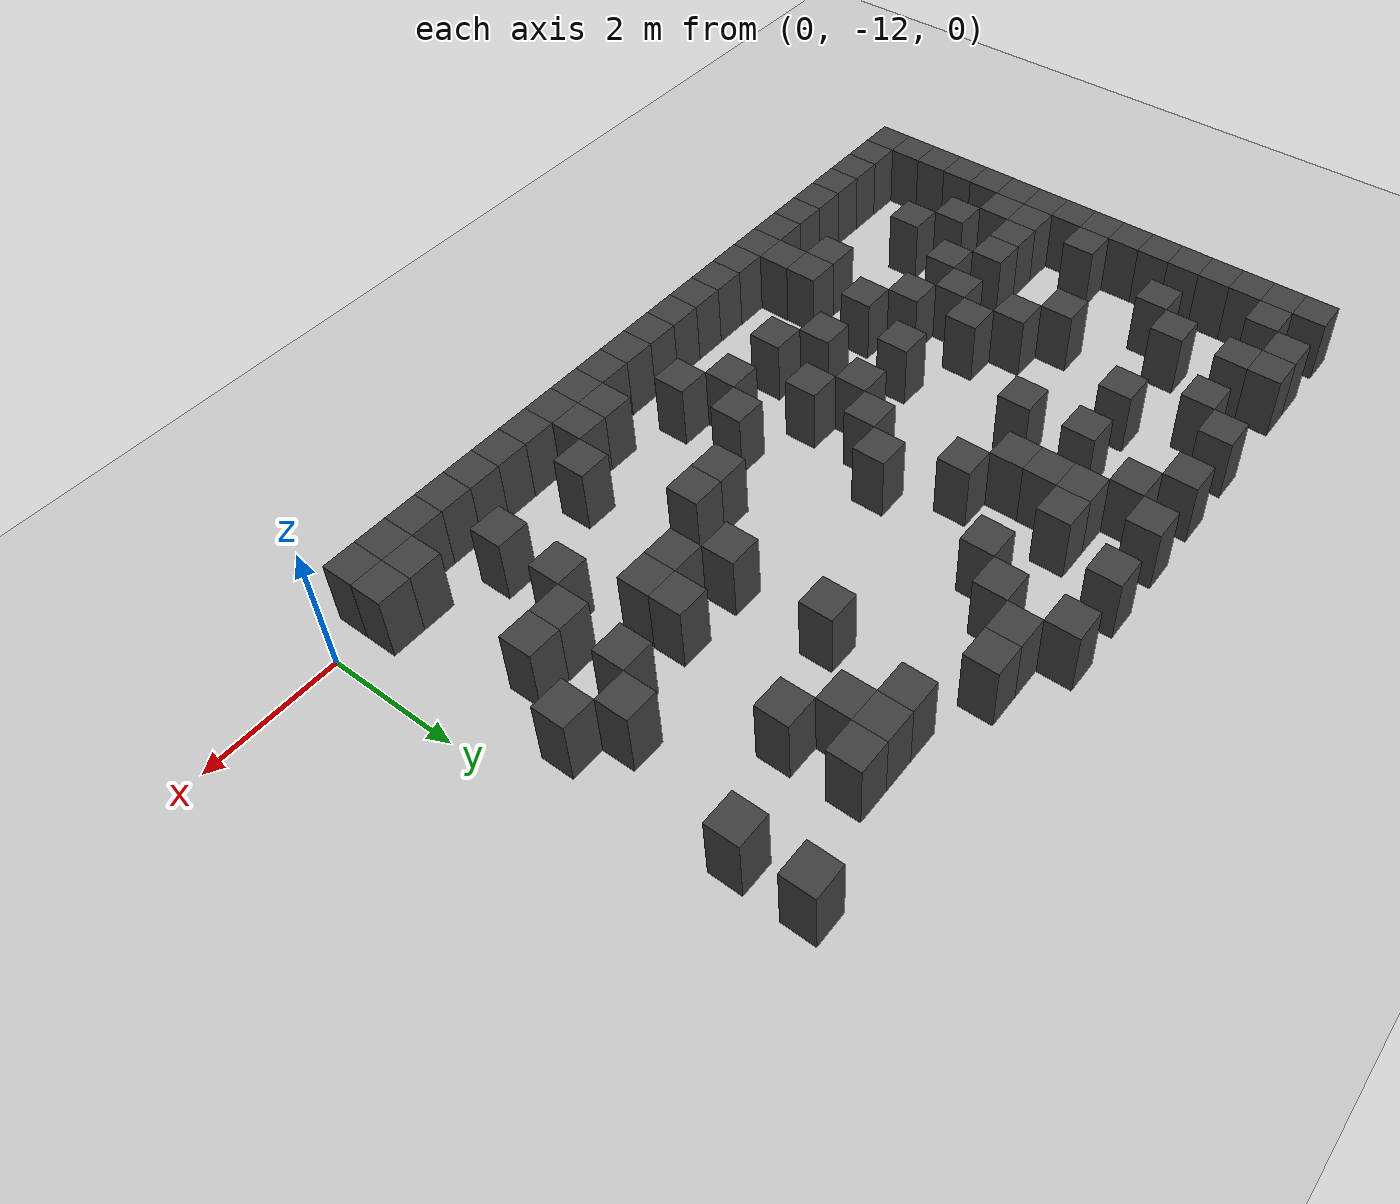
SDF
<sdf version="1.7">
 <world name="map_4557">
  <model name="ground_plane">
   <static>true</static>
   <link name="link">
    <collision name="collision">
     <geometry><plane><normal>0 0 1</normal><size>200 200</size></plane></geometry>
    </collision>
    <visual name="visual">
     <geometry><plane><normal>0 0 1</normal><size>200 200</size></plane></geometry>
     <material><ambient>0.8 0.8 0.8 1</ambient><diffuse>0.8 0.8 0.8 1</diffuse></material>
    </visual>
   </link>
  </model>
  <model name="maze_environment">
   <static>true</static>
   <link name="wall_461">
    <pose>-12.250 -4.750 0.500 0 0 0</pose>
    <collision name="col"><geometry><box><size>0.5 0.5 1.0</size></box></geometry></collision>
    <visual name="vis">
     <geometry><box><size>0.5 0.5 1.0</size></box></geometry>
     <material><ambient>0.15 0.15 0.15 1</ambient><diffuse>0.25 0.25 0.25 1</diffuse></material>
    </visual>
   </link>
   <link name="wall_462">
    <pose>-11.250 -4.750 0.500 0 0 0</pose>
    <collision name="col"><geometry><box><size>0.5 0.5 1.0</size></box></geometry></collision>
    <visual name="vis">
     <geometry><box><size>0.5 0.5 1.0</size></box></geometry>
     <material><ambient>0.15 0.15 0.15 1</ambient><diffuse>0.25 0.25 0.25 1</diffuse></material>
    </visual>
   </link>
   <link name="wall_463">
    <pose>-10.750 -4.750 0.500 0 0 0</pose>
    <collision name="col"><geometry><box><size>0.5 0.5 1.0</size></box></geometry></collision>
    <visual name="vis">
     <geometry><box><size>0.5 0.5 1.0</size></box></geometry>
     <material><ambient>0.15 0.15 0.15 1</ambient><diffuse>0.25 0.25 0.25 1</diffuse></material>
    </visual>
   </link>
   <link name="wall_464">
    <pose>-9.250 -4.750 0.500 0 0 0</pose>
    <collision name="col"><geometry><box><size>0.5 0.5 1.0</size></box></geometry></collision>
    <visual name="vis">
     <geometry><box><size>0.5 0.5 1.0</size></box></geometry>
     <material><ambient>0.15 0.15 0.15 1</ambient><diffuse>0.25 0.25 0.25 1</diffuse></material>
    </visual>
   </link>
   <link name="wall_465">
    <pose>-8.250 -4.750 0.500 0 0 0</pose>
    <collision name="col"><geometry><box><size>0.5 0.5 1.0</size></box></geometry></collision>
    <visual name="vis">
     <geometry><box><size>0.5 0.5 1.0</size></box></geometry>
     <material><ambient>0.15 0.15 0.15 1</ambient><diffuse>0.25 0.25 0.25 1</diffuse></material>
    </visual>
   </link>
   <link name="wall_466">
    <pose>-7.250 -4.750 0.500 0 0 0</pose>
    <collision name="col"><geometry><box><size>0.5 0.5 1.0</size></box></geometry></collision>
    <visual name="vis">
     <geometry><box><size>0.5 0.5 1.0</size></box></geometry>
     <material><ambient>0.15 0.15 0.15 1</ambient><diffuse>0.25 0.25 0.25 1</diffuse></material>
    </visual>
   </link>
   <link name="wall_467">
    <pose>-6.250 -4.750 0.500 0 0 0</pose>
    <collision name="col"><geometry><box><size>0.5 0.5 1.0</size></box></geometry></collision>
    <visual name="vis">
     <geometry><box><size>0.5 0.5 1.0</size></box></geometry>
     <material><ambient>0.15 0.15 0.15 1</ambient><diffuse>0.25 0.25 0.25 1</diffuse></material>
    </visual>
   </link>
   <link name="wall_468">
    <pose>-5.250 -4.750 0.500 0 0 0</pose>
    <collision name="col"><geometry><box><size>0.5 0.5 1.0</size></box></geometry></collision>
    <visual name="vis">
     <geometry><box><size>0.5 0.5 1.0</size></box></geometry>
     <material><ambient>0.15 0.15 0.15 1</ambient><diffuse>0.25 0.25 0.25 1</diffuse></material>
    </visual>
   </link>
   <link name="wall_475">
    <pose>-12.250 -5.250 0.500 0 0 0</pose>
    <collision name="col"><geometry><box><size>0.5 0.5 1.0</size></box></geometry></collision>
    <visual name="vis">
     <geometry><box><size>0.5 0.5 1.0</size></box></geometry>
     <material><ambient>0.15 0.15 0.15 1</ambient><diffuse>0.25 0.25 0.25 1</diffuse></material>
    </visual>
   </link>
   <link name="wall_476">
    <pose>-11.750 -5.250 0.500 0 0 0</pose>
    <collision name="col"><geometry><box><size>0.5 0.5 1.0</size></box></geometry></collision>
    <visual name="vis">
     <geometry><box><size>0.5 0.5 1.0</size></box></geometry>
     <material><ambient>0.15 0.15 0.15 1</ambient><diffuse>0.25 0.25 0.25 1</diffuse></material>
    </visual>
   </link>
   <link name="wall_477">
    <pose>-10.750 -5.250 0.500 0 0 0</pose>
    <collision name="col"><geometry><box><size>0.5 0.5 1.0</size></box></geometry></collision>
    <visual name="vis">
     <geometry><box><size>0.5 0.5 1.0</size></box></geometry>
     <material><ambient>0.15 0.15 0.15 1</ambient><diffuse>0.25 0.25 0.25 1</diffuse></material>
    </visual>
   </link>
   <link name="wall_478">
    <pose>-9.750 -5.250 0.500 0 0 0</pose>
    <collision name="col"><geometry><box><size>0.5 0.5 1.0</size></box></geometry></collision>
    <visual name="vis">
     <geometry><box><size>0.5 0.5 1.0</size></box></geometry>
     <material><ambient>0.15 0.15 0.15 1</ambient><diffuse>0.25 0.25 0.25 1</diffuse></material>
    </visual>
   </link>
   <link name="wall_479">
    <pose>-7.750 -5.250 0.500 0 0 0</pose>
    <collision name="col"><geometry><box><size>0.5 0.5 1.0</size></box></geometry></collision>
    <visual name="vis">
     <geometry><box><size>0.5 0.5 1.0</size></box></geometry>
     <material><ambient>0.15 0.15 0.15 1</ambient><diffuse>0.25 0.25 0.25 1</diffuse></material>
    </visual>
   </link>
   <link name="wall_480">
    <pose>-4.750 -5.250 0.500 0 0 0</pose>
    <collision name="col"><geometry><box><size>0.5 0.5 1.0</size></box></geometry></collision>
    <visual name="vis">
     <geometry><box><size>0.5 0.5 1.0</size></box></geometry>
     <material><ambient>0.15 0.15 0.15 1</ambient><diffuse>0.25 0.25 0.25 1</diffuse></material>
    </visual>
   </link>
   <link name="wall_481">
    <pose>-4.250 -5.250 0.500 0 0 0</pose>
    <collision name="col"><geometry><box><size>0.5 0.5 1.0</size></box></geometry></collision>
    <visual name="vis">
     <geometry><box><size>0.5 0.5 1.0</size></box></geometry>
     <material><ambient>0.15 0.15 0.15 1</ambient><diffuse>0.25 0.25 0.25 1</diffuse></material>
    </visual>
   </link>
   <link name="wall_482">
    <pose>-0.750 -5.250 0.500 0 0 0</pose>
    <collision name="col"><geometry><box><size>0.5 0.5 1.0</size></box></geometry></collision>
    <visual name="vis">
     <geometry><box><size>0.5 0.5 1.0</size></box></geometry>
     <material><ambient>0.15 0.15 0.15 1</ambient><diffuse>0.25 0.25 0.25 1</diffuse></material>
    </visual>
   </link>
   <link name="wall_492">
    <pose>-12.250 -5.750 0.500 0 0 0</pose>
    <collision name="col"><geometry><box><size>0.5 0.5 1.0</size></box></geometry></collision>
    <visual name="vis">
     <geometry><box><size>0.5 0.5 1.0</size></box></geometry>
     <material><ambient>0.15 0.15 0.15 1</ambient><diffuse>0.25 0.25 0.25 1</diffuse></material>
    </visual>
   </link>
   <link name="wall_493">
    <pose>-7.250 -5.750 0.500 0 0 0</pose>
    <collision name="col"><geometry><box><size>0.5 0.5 1.0</size></box></geometry></collision>
    <visual name="vis">
     <geometry><box><size>0.5 0.5 1.0</size></box></geometry>
     <material><ambient>0.15 0.15 0.15 1</ambient><diffuse>0.25 0.25 0.25 1</diffuse></material>
    </visual>
   </link>
   <link name="wall_494">
    <pose>-6.750 -5.750 0.500 0 0 0</pose>
    <collision name="col"><geometry><box><size>0.5 0.5 1.0</size></box></geometry></collision>
    <visual name="vis">
     <geometry><box><size>0.5 0.5 1.0</size></box></geometry>
     <material><ambient>0.15 0.15 0.15 1</ambient><diffuse>0.25 0.25 0.25 1</diffuse></material>
    </visual>
   </link>
   <link name="wall_495">
    <pose>-5.250 -5.750 0.500 0 0 0</pose>
    <collision name="col"><geometry><box><size>0.5 0.5 1.0</size></box></geometry></collision>
    <visual name="vis">
     <geometry><box><size>0.5 0.5 1.0</size></box></geometry>
     <material><ambient>0.15 0.15 0.15 1</ambient><diffuse>0.25 0.25 0.25 1</diffuse></material>
    </visual>
   </link>
   <link name="wall_496">
    <pose>-3.250 -5.750 0.500 0 0 0</pose>
    <collision name="col"><geometry><box><size>0.5 0.5 1.0</size></box></geometry></collision>
    <visual name="vis">
     <geometry><box><size>0.5 0.5 1.0</size></box></geometry>
     <material><ambient>0.15 0.15 0.15 1</ambient><diffuse>0.25 0.25 0.25 1</diffuse></material>
    </visual>
   </link>
   <link name="wall_497">
    <pose>-2.750 -5.750 0.500 0 0 0</pose>
    <collision name="col"><geometry><box><size>0.5 0.5 1.0</size></box></geometry></collision>
    <visual name="vis">
     <geometry><box><size>0.5 0.5 1.0</size></box></geometry>
     <material><ambient>0.15 0.15 0.15 1</ambient><diffuse>0.25 0.25 0.25 1</diffuse></material>
    </visual>
   </link>
   <link name="wall_498">
    <pose>-2.250 -5.750 0.500 0 0 0</pose>
    <collision name="col"><geometry><box><size>0.5 0.5 1.0</size></box></geometry></collision>
    <visual name="vis">
     <geometry><box><size>0.5 0.5 1.0</size></box></geometry>
     <material><ambient>0.15 0.15 0.15 1</ambient><diffuse>0.25 0.25 0.25 1</diffuse></material>
    </visual>
   </link>
   <link name="wall_505">
    <pose>-12.250 -6.250 0.500 0 0 0</pose>
    <collision name="col"><geometry><box><size>0.5 0.5 1.0</size></box></geometry></collision>
    <visual name="vis">
     <geometry><box><size>0.5 0.5 1.0</size></box></geometry>
     <material><ambient>0.15 0.15 0.15 1</ambient><diffuse>0.25 0.25 0.25 1</diffuse></material>
    </visual>
   </link>
   <link name="wall_506">
    <pose>-10.750 -6.250 0.500 0 0 0</pose>
    <collision name="col"><geometry><box><size>0.5 0.5 1.0</size></box></geometry></collision>
    <visual name="vis">
     <geometry><box><size>0.5 0.5 1.0</size></box></geometry>
     <material><ambient>0.15 0.15 0.15 1</ambient><diffuse>0.25 0.25 0.25 1</diffuse></material>
    </visual>
   </link>
   <link name="wall_507">
    <pose>-9.250 -6.250 0.500 0 0 0</pose>
    <collision name="col"><geometry><box><size>0.5 0.5 1.0</size></box></geometry></collision>
    <visual name="vis">
     <geometry><box><size>0.5 0.5 1.0</size></box></geometry>
     <material><ambient>0.15 0.15 0.15 1</ambient><diffuse>0.25 0.25 0.25 1</diffuse></material>
    </visual>
   </link>
   <link name="wall_508">
    <pose>-8.250 -6.250 0.500 0 0 0</pose>
    <collision name="col"><geometry><box><size>0.5 0.5 1.0</size></box></geometry></collision>
    <visual name="vis">
     <geometry><box><size>0.5 0.5 1.0</size></box></geometry>
     <material><ambient>0.15 0.15 0.15 1</ambient><diffuse>0.25 0.25 0.25 1</diffuse></material>
    </visual>
   </link>
   <link name="wall_509">
    <pose>-7.250 -6.250 0.500 0 0 0</pose>
    <collision name="col"><geometry><box><size>0.5 0.5 1.0</size></box></geometry></collision>
    <visual name="vis">
     <geometry><box><size>0.5 0.5 1.0</size></box></geometry>
     <material><ambient>0.15 0.15 0.15 1</ambient><diffuse>0.25 0.25 0.25 1</diffuse></material>
    </visual>
   </link>
   <link name="wall_510">
    <pose>-5.750 -6.250 0.500 0 0 0</pose>
    <collision name="col"><geometry><box><size>0.5 0.5 1.0</size></box></geometry></collision>
    <visual name="vis">
     <geometry><box><size>0.5 0.5 1.0</size></box></geometry>
     <material><ambient>0.15 0.15 0.15 1</ambient><diffuse>0.25 0.25 0.25 1</diffuse></material>
    </visual>
   </link>
   <link name="wall_511">
    <pose>-2.750 -6.250 0.500 0 0 0</pose>
    <collision name="col"><geometry><box><size>0.5 0.5 1.0</size></box></geometry></collision>
    <visual name="vis">
     <geometry><box><size>0.5 0.5 1.0</size></box></geometry>
     <material><ambient>0.15 0.15 0.15 1</ambient><diffuse>0.25 0.25 0.25 1</diffuse></material>
    </visual>
   </link>
   <link name="wall_512">
    <pose>-0.750 -6.250 0.500 0 0 0</pose>
    <collision name="col"><geometry><box><size>0.5 0.5 1.0</size></box></geometry></collision>
    <visual name="vis">
     <geometry><box><size>0.5 0.5 1.0</size></box></geometry>
     <material><ambient>0.15 0.15 0.15 1</ambient><diffuse>0.25 0.25 0.25 1</diffuse></material>
    </visual>
   </link>
   <link name="wall_518">
    <pose>-12.250 -6.750 0.500 0 0 0</pose>
    <collision name="col"><geometry><box><size>0.5 0.5 1.0</size></box></geometry></collision>
    <visual name="vis">
     <geometry><box><size>0.5 0.5 1.0</size></box></geometry>
     <material><ambient>0.15 0.15 0.15 1</ambient><diffuse>0.25 0.25 0.25 1</diffuse></material>
    </visual>
   </link>
   <link name="wall_519">
    <pose>-11.250 -6.750 0.500 0 0 0</pose>
    <collision name="col"><geometry><box><size>0.5 0.5 1.0</size></box></geometry></collision>
    <visual name="vis">
     <geometry><box><size>0.5 0.5 1.0</size></box></geometry>
     <material><ambient>0.15 0.15 0.15 1</ambient><diffuse>0.25 0.25 0.25 1</diffuse></material>
    </visual>
   </link>
   <link name="wall_520">
    <pose>-7.250 -6.750 0.500 0 0 0</pose>
    <collision name="col"><geometry><box><size>0.5 0.5 1.0</size></box></geometry></collision>
    <visual name="vis">
     <geometry><box><size>0.5 0.5 1.0</size></box></geometry>
     <material><ambient>0.15 0.15 0.15 1</ambient><diffuse>0.25 0.25 0.25 1</diffuse></material>
    </visual>
   </link>
   <link name="wall_521">
    <pose>-2.250 -6.750 0.500 0 0 0</pose>
    <collision name="col"><geometry><box><size>0.5 0.5 1.0</size></box></geometry></collision>
    <visual name="vis">
     <geometry><box><size>0.5 0.5 1.0</size></box></geometry>
     <material><ambient>0.15 0.15 0.15 1</ambient><diffuse>0.25 0.25 0.25 1</diffuse></material>
    </visual>
   </link>
   <link name="wall_526">
    <pose>-12.250 -7.250 0.500 0 0 0</pose>
    <collision name="col"><geometry><box><size>0.5 0.5 1.0</size></box></geometry></collision>
    <visual name="vis">
     <geometry><box><size>0.5 0.5 1.0</size></box></geometry>
     <material><ambient>0.15 0.15 0.15 1</ambient><diffuse>0.25 0.25 0.25 1</diffuse></material>
    </visual>
   </link>
   <link name="wall_527">
    <pose>-8.250 -7.250 0.500 0 0 0</pose>
    <collision name="col"><geometry><box><size>0.5 0.5 1.0</size></box></geometry></collision>
    <visual name="vis">
     <geometry><box><size>0.5 0.5 1.0</size></box></geometry>
     <material><ambient>0.15 0.15 0.15 1</ambient><diffuse>0.25 0.25 0.25 1</diffuse></material>
    </visual>
   </link>
   <link name="wall_528">
    <pose>-6.750 -7.250 0.500 0 0 0</pose>
    <collision name="col"><geometry><box><size>0.5 0.5 1.0</size></box></geometry></collision>
    <visual name="vis">
     <geometry><box><size>0.5 0.5 1.0</size></box></geometry>
     <material><ambient>0.15 0.15 0.15 1</ambient><diffuse>0.25 0.25 0.25 1</diffuse></material>
    </visual>
   </link>
   <link name="wall_529">
    <pose>-3.750 -7.250 0.500 0 0 0</pose>
    <collision name="col"><geometry><box><size>0.5 0.5 1.0</size></box></geometry></collision>
    <visual name="vis">
     <geometry><box><size>0.5 0.5 1.0</size></box></geometry>
     <material><ambient>0.15 0.15 0.15 1</ambient><diffuse>0.25 0.25 0.25 1</diffuse></material>
    </visual>
   </link>
   <link name="wall_539">
    <pose>-12.250 -7.750 0.500 0 0 0</pose>
    <collision name="col"><geometry><box><size>0.5 0.5 1.0</size></box></geometry></collision>
    <visual name="vis">
     <geometry><box><size>0.5 0.5 1.0</size></box></geometry>
     <material><ambient>0.15 0.15 0.15 1</ambient><diffuse>0.25 0.25 0.25 1</diffuse></material>
    </visual>
   </link>
   <link name="wall_540">
    <pose>-10.250 -7.750 0.500 0 0 0</pose>
    <collision name="col"><geometry><box><size>0.5 0.5 1.0</size></box></geometry></collision>
    <visual name="vis">
     <geometry><box><size>0.5 0.5 1.0</size></box></geometry>
     <material><ambient>0.15 0.15 0.15 1</ambient><diffuse>0.25 0.25 0.25 1</diffuse></material>
    </visual>
   </link>
   <link name="wall_545">
    <pose>-12.250 -8.250 0.500 0 0 0</pose>
    <collision name="col"><geometry><box><size>0.5 0.5 1.0</size></box></geometry></collision>
    <visual name="vis">
     <geometry><box><size>0.5 0.5 1.0</size></box></geometry>
     <material><ambient>0.15 0.15 0.15 1</ambient><diffuse>0.25 0.25 0.25 1</diffuse></material>
    </visual>
   </link>
   <link name="wall_546">
    <pose>-11.750 -8.250 0.500 0 0 0</pose>
    <collision name="col"><geometry><box><size>0.5 0.5 1.0</size></box></geometry></collision>
    <visual name="vis">
     <geometry><box><size>0.5 0.5 1.0</size></box></geometry>
     <material><ambient>0.15 0.15 0.15 1</ambient><diffuse>0.25 0.25 0.25 1</diffuse></material>
    </visual>
   </link>
   <link name="wall_547">
    <pose>-9.750 -8.250 0.500 0 0 0</pose>
    <collision name="col"><geometry><box><size>0.5 0.5 1.0</size></box></geometry></collision>
    <visual name="vis">
     <geometry><box><size>0.5 0.5 1.0</size></box></geometry>
     <material><ambient>0.15 0.15 0.15 1</ambient><diffuse>0.25 0.25 0.25 1</diffuse></material>
    </visual>
   </link>
   <link name="wall_548">
    <pose>-6.250 -8.250 0.500 0 0 0</pose>
    <collision name="col"><geometry><box><size>0.5 0.5 1.0</size></box></geometry></collision>
    <visual name="vis">
     <geometry><box><size>0.5 0.5 1.0</size></box></geometry>
     <material><ambient>0.15 0.15 0.15 1</ambient><diffuse>0.25 0.25 0.25 1</diffuse></material>
    </visual>
   </link>
   <link name="wall_549">
    <pose>-1.250 -8.250 0.500 0 0 0</pose>
    <collision name="col"><geometry><box><size>0.5 0.5 1.0</size></box></geometry></collision>
    <visual name="vis">
     <geometry><box><size>0.5 0.5 1.0</size></box></geometry>
     <material><ambient>0.15 0.15 0.15 1</ambient><diffuse>0.25 0.25 0.25 1</diffuse></material>
    </visual>
   </link>
   <link name="wall_556">
    <pose>-12.250 -8.750 0.500 0 0 0</pose>
    <collision name="col"><geometry><box><size>0.5 0.5 1.0</size></box></geometry></collision>
    <visual name="vis">
     <geometry><box><size>0.5 0.5 1.0</size></box></geometry>
     <material><ambient>0.15 0.15 0.15 1</ambient><diffuse>0.25 0.25 0.25 1</diffuse></material>
    </visual>
   </link>
   <link name="wall_557">
    <pose>-9.250 -8.750 0.500 0 0 0</pose>
    <collision name="col"><geometry><box><size>0.5 0.5 1.0</size></box></geometry></collision>
    <visual name="vis">
     <geometry><box><size>0.5 0.5 1.0</size></box></geometry>
     <material><ambient>0.15 0.15 0.15 1</ambient><diffuse>0.25 0.25 0.25 1</diffuse></material>
    </visual>
   </link>
   <link name="wall_558">
    <pose>-6.750 -8.750 0.500 0 0 0</pose>
    <collision name="col"><geometry><box><size>0.5 0.5 1.0</size></box></geometry></collision>
    <visual name="vis">
     <geometry><box><size>0.5 0.5 1.0</size></box></geometry>
     <material><ambient>0.15 0.15 0.15 1</ambient><diffuse>0.25 0.25 0.25 1</diffuse></material>
    </visual>
   </link>
   <link name="wall_559">
    <pose>-3.750 -8.750 0.500 0 0 0</pose>
    <collision name="col"><geometry><box><size>0.5 0.5 1.0</size></box></geometry></collision>
    <visual name="vis">
     <geometry><box><size>0.5 0.5 1.0</size></box></geometry>
     <material><ambient>0.15 0.15 0.15 1</ambient><diffuse>0.25 0.25 0.25 1</diffuse></material>
    </visual>
   </link>
   <link name="wall_560">
    <pose>-2.750 -8.750 0.500 0 0 0</pose>
    <collision name="col"><geometry><box><size>0.5 0.5 1.0</size></box></geometry></collision>
    <visual name="vis">
     <geometry><box><size>0.5 0.5 1.0</size></box></geometry>
     <material><ambient>0.15 0.15 0.15 1</ambient><diffuse>0.25 0.25 0.25 1</diffuse></material>
    </visual>
   </link>
   <link name="wall_561">
    <pose>-1.750 -8.750 0.500 0 0 0</pose>
    <collision name="col"><geometry><box><size>0.5 0.5 1.0</size></box></geometry></collision>
    <visual name="vis">
     <geometry><box><size>0.5 0.5 1.0</size></box></geometry>
     <material><ambient>0.15 0.15 0.15 1</ambient><diffuse>0.25 0.25 0.25 1</diffuse></material>
    </visual>
   </link>
   <link name="wall_562">
    <pose>-0.750 -8.750 0.500 0 0 0</pose>
    <collision name="col"><geometry><box><size>0.5 0.5 1.0</size></box></geometry></collision>
    <visual name="vis">
     <geometry><box><size>0.5 0.5 1.0</size></box></geometry>
     <material><ambient>0.15 0.15 0.15 1</ambient><diffuse>0.25 0.25 0.25 1</diffuse></material>
    </visual>
   </link>
   <link name="wall_573">
    <pose>-12.250 -9.250 0.500 0 0 0</pose>
    <collision name="col"><geometry><box><size>0.5 0.5 1.0</size></box></geometry></collision>
    <visual name="vis">
     <geometry><box><size>0.5 0.5 1.0</size></box></geometry>
     <material><ambient>0.15 0.15 0.15 1</ambient><diffuse>0.25 0.25 0.25 1</diffuse></material>
    </visual>
   </link>
   <link name="wall_574">
    <pose>-11.750 -9.250 0.500 0 0 0</pose>
    <collision name="col"><geometry><box><size>0.5 0.5 1.0</size></box></geometry></collision>
    <visual name="vis">
     <geometry><box><size>0.5 0.5 1.0</size></box></geometry>
     <material><ambient>0.15 0.15 0.15 1</ambient><diffuse>0.25 0.25 0.25 1</diffuse></material>
    </visual>
   </link>
   <link name="wall_575">
    <pose>-11.250 -9.250 0.500 0 0 0</pose>
    <collision name="col"><geometry><box><size>0.5 0.5 1.0</size></box></geometry></collision>
    <visual name="vis">
     <geometry><box><size>0.5 0.5 1.0</size></box></geometry>
     <material><ambient>0.15 0.15 0.15 1</ambient><diffuse>0.25 0.25 0.25 1</diffuse></material>
    </visual>
   </link>
   <link name="wall_576">
    <pose>-10.750 -9.250 0.500 0 0 0</pose>
    <collision name="col"><geometry><box><size>0.5 0.5 1.0</size></box></geometry></collision>
    <visual name="vis">
     <geometry><box><size>0.5 0.5 1.0</size></box></geometry>
     <material><ambient>0.15 0.15 0.15 1</ambient><diffuse>0.25 0.25 0.25 1</diffuse></material>
    </visual>
   </link>
   <link name="wall_577">
    <pose>-9.750 -9.250 0.500 0 0 0</pose>
    <collision name="col"><geometry><box><size>0.5 0.5 1.0</size></box></geometry></collision>
    <visual name="vis">
     <geometry><box><size>0.5 0.5 1.0</size></box></geometry>
     <material><ambient>0.15 0.15 0.15 1</ambient><diffuse>0.25 0.25 0.25 1</diffuse></material>
    </visual>
   </link>
   <link name="wall_578">
    <pose>-8.250 -9.250 0.500 0 0 0</pose>
    <collision name="col"><geometry><box><size>0.5 0.5 1.0</size></box></geometry></collision>
    <visual name="vis">
     <geometry><box><size>0.5 0.5 1.0</size></box></geometry>
     <material><ambient>0.15 0.15 0.15 1</ambient><diffuse>0.25 0.25 0.25 1</diffuse></material>
    </visual>
   </link>
   <link name="wall_579">
    <pose>-7.250 -9.250 0.500 0 0 0</pose>
    <collision name="col"><geometry><box><size>0.5 0.5 1.0</size></box></geometry></collision>
    <visual name="vis">
     <geometry><box><size>0.5 0.5 1.0</size></box></geometry>
     <material><ambient>0.15 0.15 0.15 1</ambient><diffuse>0.25 0.25 0.25 1</diffuse></material>
    </visual>
   </link>
   <link name="wall_580">
    <pose>-3.250 -9.250 0.500 0 0 0</pose>
    <collision name="col"><geometry><box><size>0.5 0.5 1.0</size></box></geometry></collision>
    <visual name="vis">
     <geometry><box><size>0.5 0.5 1.0</size></box></geometry>
     <material><ambient>0.15 0.15 0.15 1</ambient><diffuse>0.25 0.25 0.25 1</diffuse></material>
    </visual>
   </link>
   <link name="wall_581">
    <pose>-2.750 -9.250 0.500 0 0 0</pose>
    <collision name="col"><geometry><box><size>0.5 0.5 1.0</size></box></geometry></collision>
    <visual name="vis">
     <geometry><box><size>0.5 0.5 1.0</size></box></geometry>
     <material><ambient>0.15 0.15 0.15 1</ambient><diffuse>0.25 0.25 0.25 1</diffuse></material>
    </visual>
   </link>
   <link name="wall_590">
    <pose>-12.250 -9.750 0.500 0 0 0</pose>
    <collision name="col"><geometry><box><size>0.5 0.5 1.0</size></box></geometry></collision>
    <visual name="vis">
     <geometry><box><size>0.5 0.5 1.0</size></box></geometry>
     <material><ambient>0.15 0.15 0.15 1</ambient><diffuse>0.25 0.25 0.25 1</diffuse></material>
    </visual>
   </link>
   <link name="wall_591">
    <pose>-11.750 -9.750 0.500 0 0 0</pose>
    <collision name="col"><geometry><box><size>0.5 0.5 1.0</size></box></geometry></collision>
    <visual name="vis">
     <geometry><box><size>0.5 0.5 1.0</size></box></geometry>
     <material><ambient>0.15 0.15 0.15 1</ambient><diffuse>0.25 0.25 0.25 1</diffuse></material>
    </visual>
   </link>
   <link name="wall_592">
    <pose>-10.250 -9.750 0.500 0 0 0</pose>
    <collision name="col"><geometry><box><size>0.5 0.5 1.0</size></box></geometry></collision>
    <visual name="vis">
     <geometry><box><size>0.5 0.5 1.0</size></box></geometry>
     <material><ambient>0.15 0.15 0.15 1</ambient><diffuse>0.25 0.25 0.25 1</diffuse></material>
    </visual>
   </link>
   <link name="wall_593">
    <pose>-9.250 -9.750 0.500 0 0 0</pose>
    <collision name="col"><geometry><box><size>0.5 0.5 1.0</size></box></geometry></collision>
    <visual name="vis">
     <geometry><box><size>0.5 0.5 1.0</size></box></geometry>
     <material><ambient>0.15 0.15 0.15 1</ambient><diffuse>0.25 0.25 0.25 1</diffuse></material>
    </visual>
   </link>
   <link name="wall_594">
    <pose>-6.750 -9.750 0.500 0 0 0</pose>
    <collision name="col"><geometry><box><size>0.5 0.5 1.0</size></box></geometry></collision>
    <visual name="vis">
     <geometry><box><size>0.5 0.5 1.0</size></box></geometry>
     <material><ambient>0.15 0.15 0.15 1</ambient><diffuse>0.25 0.25 0.25 1</diffuse></material>
    </visual>
   </link>
   <link name="wall_595">
    <pose>-4.750 -9.750 0.500 0 0 0</pose>
    <collision name="col"><geometry><box><size>0.5 0.5 1.0</size></box></geometry></collision>
    <visual name="vis">
     <geometry><box><size>0.5 0.5 1.0</size></box></geometry>
     <material><ambient>0.15 0.15 0.15 1</ambient><diffuse>0.25 0.25 0.25 1</diffuse></material>
    </visual>
   </link>
   <link name="wall_596">
    <pose>-4.250 -9.750 0.500 0 0 0</pose>
    <collision name="col"><geometry><box><size>0.5 0.5 1.0</size></box></geometry></collision>
    <visual name="vis">
     <geometry><box><size>0.5 0.5 1.0</size></box></geometry>
     <material><ambient>0.15 0.15 0.15 1</ambient><diffuse>0.25 0.25 0.25 1</diffuse></material>
    </visual>
   </link>
   <link name="wall_597">
    <pose>-1.750 -9.750 0.500 0 0 0</pose>
    <collision name="col"><geometry><box><size>0.5 0.5 1.0</size></box></geometry></collision>
    <visual name="vis">
     <geometry><box><size>0.5 0.5 1.0</size></box></geometry>
     <material><ambient>0.15 0.15 0.15 1</ambient><diffuse>0.25 0.25 0.25 1</diffuse></material>
    </visual>
   </link>
   <link name="wall_598">
    <pose>-1.250 -9.750 0.500 0 0 0</pose>
    <collision name="col"><geometry><box><size>0.5 0.5 1.0</size></box></geometry></collision>
    <visual name="vis">
     <geometry><box><size>0.5 0.5 1.0</size></box></geometry>
     <material><ambient>0.15 0.15 0.15 1</ambient><diffuse>0.25 0.25 0.25 1</diffuse></material>
    </visual>
   </link>
   <link name="wall_604">
    <pose>-12.250 -10.250 0.500 0 0 0</pose>
    <collision name="col"><geometry><box><size>0.5 0.5 1.0</size></box></geometry></collision>
    <visual name="vis">
     <geometry><box><size>0.5 0.5 1.0</size></box></geometry>
     <material><ambient>0.15 0.15 0.15 1</ambient><diffuse>0.25 0.25 0.25 1</diffuse></material>
    </visual>
   </link>
   <link name="wall_605">
    <pose>-11.250 -10.250 0.500 0 0 0</pose>
    <collision name="col"><geometry><box><size>0.5 0.5 1.0</size></box></geometry></collision>
    <visual name="vis">
     <geometry><box><size>0.5 0.5 1.0</size></box></geometry>
     <material><ambient>0.15 0.15 0.15 1</ambient><diffuse>0.25 0.25 0.25 1</diffuse></material>
    </visual>
   </link>
   <link name="wall_606">
    <pose>-8.750 -10.250 0.500 0 0 0</pose>
    <collision name="col"><geometry><box><size>0.5 0.5 1.0</size></box></geometry></collision>
    <visual name="vis">
     <geometry><box><size>0.5 0.5 1.0</size></box></geometry>
     <material><ambient>0.15 0.15 0.15 1</ambient><diffuse>0.25 0.25 0.25 1</diffuse></material>
    </visual>
   </link>
   <link name="wall_607">
    <pose>-7.750 -10.250 0.500 0 0 0</pose>
    <collision name="col"><geometry><box><size>0.5 0.5 1.0</size></box></geometry></collision>
    <visual name="vis">
     <geometry><box><size>0.5 0.5 1.0</size></box></geometry>
     <material><ambient>0.15 0.15 0.15 1</ambient><diffuse>0.25 0.25 0.25 1</diffuse></material>
    </visual>
   </link>
   <link name="wall_608">
    <pose>-5.750 -10.250 0.500 0 0 0</pose>
    <collision name="col"><geometry><box><size>0.5 0.5 1.0</size></box></geometry></collision>
    <visual name="vis">
     <geometry><box><size>0.5 0.5 1.0</size></box></geometry>
     <material><ambient>0.15 0.15 0.15 1</ambient><diffuse>0.25 0.25 0.25 1</diffuse></material>
    </visual>
   </link>
   <link name="wall_609">
    <pose>-2.250 -10.250 0.500 0 0 0</pose>
    <collision name="col"><geometry><box><size>0.5 0.5 1.0</size></box></geometry></collision>
    <visual name="vis">
     <geometry><box><size>0.5 0.5 1.0</size></box></geometry>
     <material><ambient>0.15 0.15 0.15 1</ambient><diffuse>0.25 0.25 0.25 1</diffuse></material>
    </visual>
   </link>
   <link name="wall_620">
    <pose>-12.250 -10.750 0.500 0 0 0</pose>
    <collision name="col"><geometry><box><size>0.5 0.5 1.0</size></box></geometry></collision>
    <visual name="vis">
     <geometry><box><size>0.5 0.5 1.0</size></box></geometry>
     <material><ambient>0.15 0.15 0.15 1</ambient><diffuse>0.25 0.25 0.25 1</diffuse></material>
    </visual>
   </link>
   <link name="wall_621">
    <pose>-10.750 -10.750 0.500 0 0 0</pose>
    <collision name="col"><geometry><box><size>0.5 0.5 1.0</size></box></geometry></collision>
    <visual name="vis">
     <geometry><box><size>0.5 0.5 1.0</size></box></geometry>
     <material><ambient>0.15 0.15 0.15 1</ambient><diffuse>0.25 0.25 0.25 1</diffuse></material>
    </visual>
   </link>
   <link name="wall_622">
    <pose>-7.250 -10.750 0.500 0 0 0</pose>
    <collision name="col"><geometry><box><size>0.5 0.5 1.0</size></box></geometry></collision>
    <visual name="vis">
     <geometry><box><size>0.5 0.5 1.0</size></box></geometry>
     <material><ambient>0.15 0.15 0.15 1</ambient><diffuse>0.25 0.25 0.25 1</diffuse></material>
    </visual>
   </link>
   <link name="wall_623">
    <pose>-6.250 -10.750 0.500 0 0 0</pose>
    <collision name="col"><geometry><box><size>0.5 0.5 1.0</size></box></geometry></collision>
    <visual name="vis">
     <geometry><box><size>0.5 0.5 1.0</size></box></geometry>
     <material><ambient>0.15 0.15 0.15 1</ambient><diffuse>0.25 0.25 0.25 1</diffuse></material>
    </visual>
   </link>
   <link name="wall_628">
    <pose>-12.250 -11.250 0.500 0 0 0</pose>
    <collision name="col"><geometry><box><size>0.5 0.5 1.0</size></box></geometry></collision>
    <visual name="vis">
     <geometry><box><size>0.5 0.5 1.0</size></box></geometry>
     <material><ambient>0.15 0.15 0.15 1</ambient><diffuse>0.25 0.25 0.25 1</diffuse></material>
    </visual>
   </link>
   <link name="wall_629">
    <pose>-9.250 -11.250 0.500 0 0 0</pose>
    <collision name="col"><geometry><box><size>0.5 0.5 1.0</size></box></geometry></collision>
    <visual name="vis">
     <geometry><box><size>0.5 0.5 1.0</size></box></geometry>
     <material><ambient>0.15 0.15 0.15 1</ambient><diffuse>0.25 0.25 0.25 1</diffuse></material>
    </visual>
   </link>
   <link name="wall_630">
    <pose>-8.750 -11.250 0.500 0 0 0</pose>
    <collision name="col"><geometry><box><size>0.5 0.5 1.0</size></box></geometry></collision>
    <visual name="vis">
     <geometry><box><size>0.5 0.5 1.0</size></box></geometry>
     <material><ambient>0.15 0.15 0.15 1</ambient><diffuse>0.25 0.25 0.25 1</diffuse></material>
    </visual>
   </link>
   <link name="wall_631">
    <pose>-5.750 -11.250 0.500 0 0 0</pose>
    <collision name="col"><geometry><box><size>0.5 0.5 1.0</size></box></geometry></collision>
    <visual name="vis">
     <geometry><box><size>0.5 0.5 1.0</size></box></geometry>
     <material><ambient>0.15 0.15 0.15 1</ambient><diffuse>0.25 0.25 0.25 1</diffuse></material>
    </visual>
   </link>
   <link name="wall_632">
    <pose>-3.750 -11.250 0.500 0 0 0</pose>
    <collision name="col"><geometry><box><size>0.5 0.5 1.0</size></box></geometry></collision>
    <visual name="vis">
     <geometry><box><size>0.5 0.5 1.0</size></box></geometry>
     <material><ambient>0.15 0.15 0.15 1</ambient><diffuse>0.25 0.25 0.25 1</diffuse></material>
    </visual>
   </link>
   <link name="wall_633">
    <pose>-2.250 -11.250 0.500 0 0 0</pose>
    <collision name="col"><geometry><box><size>0.5 0.5 1.0</size></box></geometry></collision>
    <visual name="vis">
     <geometry><box><size>0.5 0.5 1.0</size></box></geometry>
     <material><ambient>0.15 0.15 0.15 1</ambient><diffuse>0.25 0.25 0.25 1</diffuse></material>
    </visual>
   </link>
   <link name="wall_642">
    <pose>-12.250 -11.750 0.500 0 0 0</pose>
    <collision name="col"><geometry><box><size>0.5 0.5 1.0</size></box></geometry></collision>
    <visual name="vis">
     <geometry><box><size>0.5 0.5 1.0</size></box></geometry>
     <material><ambient>0.15 0.15 0.15 1</ambient><diffuse>0.25 0.25 0.25 1</diffuse></material>
    </visual>
   </link>
   <link name="wall_643">
    <pose>-8.750 -11.750 0.500 0 0 0</pose>
    <collision name="col"><geometry><box><size>0.5 0.5 1.0</size></box></geometry></collision>
    <visual name="vis">
     <geometry><box><size>0.5 0.5 1.0</size></box></geometry>
     <material><ambient>0.15 0.15 0.15 1</ambient><diffuse>0.25 0.25 0.25 1</diffuse></material>
    </visual>
   </link>
   <link name="wall_644">
    <pose>-4.750 -11.750 0.500 0 0 0</pose>
    <collision name="col"><geometry><box><size>0.5 0.5 1.0</size></box></geometry></collision>
    <visual name="vis">
     <geometry><box><size>0.5 0.5 1.0</size></box></geometry>
     <material><ambient>0.15 0.15 0.15 1</ambient><diffuse>0.25 0.25 0.25 1</diffuse></material>
    </visual>
   </link>
   <link name="wall_645">
    <pose>-4.250 -11.750 0.500 0 0 0</pose>
    <collision name="col"><geometry><box><size>0.5 0.5 1.0</size></box></geometry></collision>
    <visual name="vis">
     <geometry><box><size>0.5 0.5 1.0</size></box></geometry>
     <material><ambient>0.15 0.15 0.15 1</ambient><diffuse>0.25 0.25 0.25 1</diffuse></material>
    </visual>
   </link>
   <link name="wall_646">
    <pose>-1.250 -11.750 0.500 0 0 0</pose>
    <collision name="col"><geometry><box><size>0.5 0.5 1.0</size></box></geometry></collision>
    <visual name="vis">
     <geometry><box><size>0.5 0.5 1.0</size></box></geometry>
     <material><ambient>0.15 0.15 0.15 1</ambient><diffuse>0.25 0.25 0.25 1</diffuse></material>
    </visual>
   </link>
   <link name="wall_647">
    <pose>-0.750 -11.750 0.500 0 0 0</pose>
    <collision name="col"><geometry><box><size>0.5 0.5 1.0</size></box></geometry></collision>
    <visual name="vis">
     <geometry><box><size>0.5 0.5 1.0</size></box></geometry>
     <material><ambient>0.15 0.15 0.15 1</ambient><diffuse>0.25 0.25 0.25 1</diffuse></material>
    </visual>
   </link>
   <link name="wall_651">
    <pose>-12.250 -12.250 0.500 0 0 0</pose>
    <collision name="col"><geometry><box><size>0.5 0.5 1.0</size></box></geometry></collision>
    <visual name="vis">
     <geometry><box><size>0.5 0.5 1.0</size></box></geometry>
     <material><ambient>0.15 0.15 0.15 1</ambient><diffuse>0.25 0.25 0.25 1</diffuse></material>
    </visual>
   </link>
   <link name="wall_652">
    <pose>-11.750 -12.250 0.500 0 0 0</pose>
    <collision name="col"><geometry><box><size>0.5 0.5 1.0</size></box></geometry></collision>
    <visual name="vis">
     <geometry><box><size>0.5 0.5 1.0</size></box></geometry>
     <material><ambient>0.15 0.15 0.15 1</ambient><diffuse>0.25 0.25 0.25 1</diffuse></material>
    </visual>
   </link>
   <link name="wall_653">
    <pose>-11.250 -12.250 0.500 0 0 0</pose>
    <collision name="col"><geometry><box><size>0.5 0.5 1.0</size></box></geometry></collision>
    <visual name="vis">
     <geometry><box><size>0.5 0.5 1.0</size></box></geometry>
     <material><ambient>0.15 0.15 0.15 1</ambient><diffuse>0.25 0.25 0.25 1</diffuse></material>
    </visual>
   </link>
   <link name="wall_654">
    <pose>-10.750 -12.250 0.500 0 0 0</pose>
    <collision name="col"><geometry><box><size>0.5 0.5 1.0</size></box></geometry></collision>
    <visual name="vis">
     <geometry><box><size>0.5 0.5 1.0</size></box></geometry>
     <material><ambient>0.15 0.15 0.15 1</ambient><diffuse>0.25 0.25 0.25 1</diffuse></material>
    </visual>
   </link>
   <link name="wall_655">
    <pose>-10.250 -12.250 0.500 0 0 0</pose>
    <collision name="col"><geometry><box><size>0.5 0.5 1.0</size></box></geometry></collision>
    <visual name="vis">
     <geometry><box><size>0.5 0.5 1.0</size></box></geometry>
     <material><ambient>0.15 0.15 0.15 1</ambient><diffuse>0.25 0.25 0.25 1</diffuse></material>
    </visual>
   </link>
   <link name="wall_656">
    <pose>-9.750 -12.250 0.500 0 0 0</pose>
    <collision name="col"><geometry><box><size>0.5 0.5 1.0</size></box></geometry></collision>
    <visual name="vis">
     <geometry><box><size>0.5 0.5 1.0</size></box></geometry>
     <material><ambient>0.15 0.15 0.15 1</ambient><diffuse>0.25 0.25 0.25 1</diffuse></material>
    </visual>
   </link>
   <link name="wall_657">
    <pose>-9.250 -12.250 0.500 0 0 0</pose>
    <collision name="col"><geometry><box><size>0.5 0.5 1.0</size></box></geometry></collision>
    <visual name="vis">
     <geometry><box><size>0.5 0.5 1.0</size></box></geometry>
     <material><ambient>0.15 0.15 0.15 1</ambient><diffuse>0.25 0.25 0.25 1</diffuse></material>
    </visual>
   </link>
   <link name="wall_658">
    <pose>-8.750 -12.250 0.500 0 0 0</pose>
    <collision name="col"><geometry><box><size>0.5 0.5 1.0</size></box></geometry></collision>
    <visual name="vis">
     <geometry><box><size>0.5 0.5 1.0</size></box></geometry>
     <material><ambient>0.15 0.15 0.15 1</ambient><diffuse>0.25 0.25 0.25 1</diffuse></material>
    </visual>
   </link>
   <link name="wall_659">
    <pose>-8.250 -12.250 0.500 0 0 0</pose>
    <collision name="col"><geometry><box><size>0.5 0.5 1.0</size></box></geometry></collision>
    <visual name="vis">
     <geometry><box><size>0.5 0.5 1.0</size></box></geometry>
     <material><ambient>0.15 0.15 0.15 1</ambient><diffuse>0.25 0.25 0.25 1</diffuse></material>
    </visual>
   </link>
   <link name="wall_660">
    <pose>-7.750 -12.250 0.500 0 0 0</pose>
    <collision name="col"><geometry><box><size>0.5 0.5 1.0</size></box></geometry></collision>
    <visual name="vis">
     <geometry><box><size>0.5 0.5 1.0</size></box></geometry>
     <material><ambient>0.15 0.15 0.15 1</ambient><diffuse>0.25 0.25 0.25 1</diffuse></material>
    </visual>
   </link>
   <link name="wall_661">
    <pose>-7.250 -12.250 0.500 0 0 0</pose>
    <collision name="col"><geometry><box><size>0.5 0.5 1.0</size></box></geometry></collision>
    <visual name="vis">
     <geometry><box><size>0.5 0.5 1.0</size></box></geometry>
     <material><ambient>0.15 0.15 0.15 1</ambient><diffuse>0.25 0.25 0.25 1</diffuse></material>
    </visual>
   </link>
   <link name="wall_662">
    <pose>-6.750 -12.250 0.500 0 0 0</pose>
    <collision name="col"><geometry><box><size>0.5 0.5 1.0</size></box></geometry></collision>
    <visual name="vis">
     <geometry><box><size>0.5 0.5 1.0</size></box></geometry>
     <material><ambient>0.15 0.15 0.15 1</ambient><diffuse>0.25 0.25 0.25 1</diffuse></material>
    </visual>
   </link>
   <link name="wall_663">
    <pose>-6.250 -12.250 0.500 0 0 0</pose>
    <collision name="col"><geometry><box><size>0.5 0.5 1.0</size></box></geometry></collision>
    <visual name="vis">
     <geometry><box><size>0.5 0.5 1.0</size></box></geometry>
     <material><ambient>0.15 0.15 0.15 1</ambient><diffuse>0.25 0.25 0.25 1</diffuse></material>
    </visual>
   </link>
   <link name="wall_664">
    <pose>-5.750 -12.250 0.500 0 0 0</pose>
    <collision name="col"><geometry><box><size>0.5 0.5 1.0</size></box></geometry></collision>
    <visual name="vis">
     <geometry><box><size>0.5 0.5 1.0</size></box></geometry>
     <material><ambient>0.15 0.15 0.15 1</ambient><diffuse>0.25 0.25 0.25 1</diffuse></material>
    </visual>
   </link>
   <link name="wall_665">
    <pose>-5.250 -12.250 0.500 0 0 0</pose>
    <collision name="col"><geometry><box><size>0.5 0.5 1.0</size></box></geometry></collision>
    <visual name="vis">
     <geometry><box><size>0.5 0.5 1.0</size></box></geometry>
     <material><ambient>0.15 0.15 0.15 1</ambient><diffuse>0.25 0.25 0.25 1</diffuse></material>
    </visual>
   </link>
   <link name="wall_666">
    <pose>-4.750 -12.250 0.500 0 0 0</pose>
    <collision name="col"><geometry><box><size>0.5 0.5 1.0</size></box></geometry></collision>
    <visual name="vis">
     <geometry><box><size>0.5 0.5 1.0</size></box></geometry>
     <material><ambient>0.15 0.15 0.15 1</ambient><diffuse>0.25 0.25 0.25 1</diffuse></material>
    </visual>
   </link>
   <link name="wall_667">
    <pose>-4.250 -12.250 0.500 0 0 0</pose>
    <collision name="col"><geometry><box><size>0.5 0.5 1.0</size></box></geometry></collision>
    <visual name="vis">
     <geometry><box><size>0.5 0.5 1.0</size></box></geometry>
     <material><ambient>0.15 0.15 0.15 1</ambient><diffuse>0.25 0.25 0.25 1</diffuse></material>
    </visual>
   </link>
   <link name="wall_668">
    <pose>-3.750 -12.250 0.500 0 0 0</pose>
    <collision name="col"><geometry><box><size>0.5 0.5 1.0</size></box></geometry></collision>
    <visual name="vis">
     <geometry><box><size>0.5 0.5 1.0</size></box></geometry>
     <material><ambient>0.15 0.15 0.15 1</ambient><diffuse>0.25 0.25 0.25 1</diffuse></material>
    </visual>
   </link>
   <link name="wall_669">
    <pose>-3.250 -12.250 0.500 0 0 0</pose>
    <collision name="col"><geometry><box><size>0.5 0.5 1.0</size></box></geometry></collision>
    <visual name="vis">
     <geometry><box><size>0.5 0.5 1.0</size></box></geometry>
     <material><ambient>0.15 0.15 0.15 1</ambient><diffuse>0.25 0.25 0.25 1</diffuse></material>
    </visual>
   </link>
   <link name="wall_670">
    <pose>-2.750 -12.250 0.500 0 0 0</pose>
    <collision name="col"><geometry><box><size>0.5 0.5 1.0</size></box></geometry></collision>
    <visual name="vis">
     <geometry><box><size>0.5 0.5 1.0</size></box></geometry>
     <material><ambient>0.15 0.15 0.15 1</ambient><diffuse>0.25 0.25 0.25 1</diffuse></material>
    </visual>
   </link>
   <link name="wall_671">
    <pose>-2.250 -12.250 0.500 0 0 0</pose>
    <collision name="col"><geometry><box><size>0.5 0.5 1.0</size></box></geometry></collision>
    <visual name="vis">
     <geometry><box><size>0.5 0.5 1.0</size></box></geometry>
     <material><ambient>0.15 0.15 0.15 1</ambient><diffuse>0.25 0.25 0.25 1</diffuse></material>
    </visual>
   </link>
   <link name="wall_672">
    <pose>-1.750 -12.250 0.500 0 0 0</pose>
    <collision name="col"><geometry><box><size>0.5 0.5 1.0</size></box></geometry></collision>
    <visual name="vis">
     <geometry><box><size>0.5 0.5 1.0</size></box></geometry>
     <material><ambient>0.15 0.15 0.15 1</ambient><diffuse>0.25 0.25 0.25 1</diffuse></material>
    </visual>
   </link>
   <link name="wall_673">
    <pose>-1.250 -12.250 0.500 0 0 0</pose>
    <collision name="col"><geometry><box><size>0.5 0.5 1.0</size></box></geometry></collision>
    <visual name="vis">
     <geometry><box><size>0.5 0.5 1.0</size></box></geometry>
     <material><ambient>0.15 0.15 0.15 1</ambient><diffuse>0.25 0.25 0.25 1</diffuse></material>
    </visual>
   </link>
   <link name="wall_674">
    <pose>-0.750 -12.250 0.500 0 0 0</pose>
    <collision name="col"><geometry><box><size>0.5 0.5 1.0</size></box></geometry></collision>
    <visual name="vis">
     <geometry><box><size>0.5 0.5 1.0</size></box></geometry>
     <material><ambient>0.15 0.15 0.15 1</ambient><diffuse>0.25 0.25 0.25 1</diffuse></material>
    </visual>
   </link>
  </model>
 </world>
</sdf>
